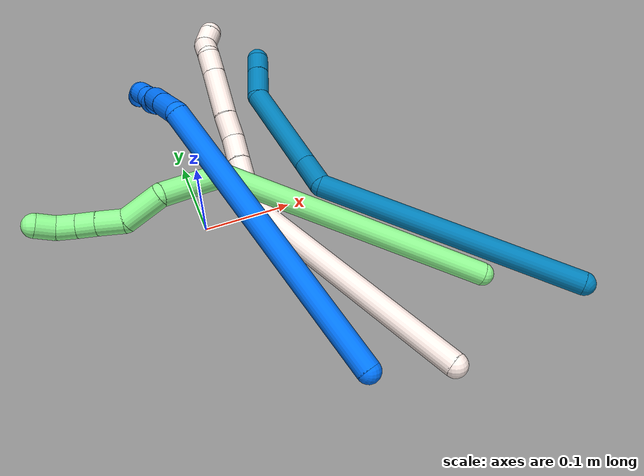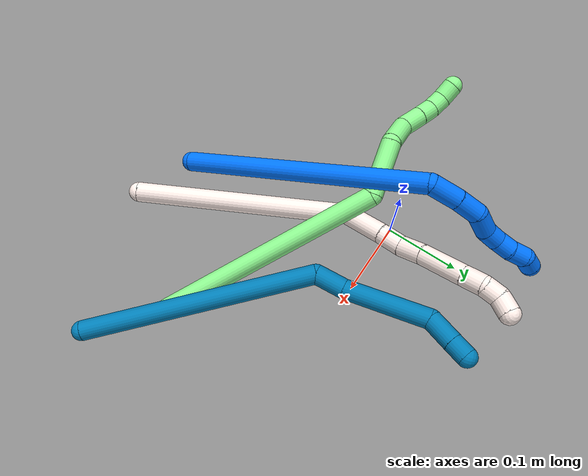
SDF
<sdf version="1.7">
 <world name="default">
  <model name="9">
   <static>0</static>
   <link name="9">
    <collision name="collision-cylinder-e_1_1_4">
     <pose>-0.069131 -0.017138 -0.128841 3.00936 -0.488819 -2.62257</pose>
     <geometry><cylinder><radius>0.0125</radius><length>0.294434</length></cylinder></geometry>
     <surface>
      <friction><ode><mu>1.16</mu><mu2>1.16</mu2><slip1>0</slip1><slip2>0</slip2></ode></friction>
      <contact><ode><kp>1e+06</kp><kd>1</kd><max_vel>0</max_vel><min_depth>0.001</min_depth></ode></contact>
     </surface>
    </collision>
    <visual name="visual-cylinder-e_1_1_4">
     <pose>-0.069131 -0.017138 -0.128841 3.00936 -0.488819 -2.62257</pose>
     <geometry><cylinder><radius>0.0125</radius><length>0.294434</length></cylinder></geometry>
     <material><ambient>0 0.490196 0.709804 1</ambient></material>
    </visual>
    <collision name="collision-cylinder-e_2_4_5">
     <pose>-0.134564 -0.031644 -0.276446 -3.00226 0.192744 -1.89115</pose>
     <geometry><cylinder><radius>0.0125</radius><length>0.038608</length></cylinder></geometry>
     <surface>
      <friction><ode><mu>1.16</mu><mu2>1.16</mu2><slip1>0</slip1><slip2>0</slip2></ode></friction>
      <contact><ode><kp>1e+06</kp><kd>1</kd><max_vel>0</max_vel><min_depth>0.001</min_depth></ode></contact>
     </surface>
    </collision>
    <visual name="visual-cylinder-e_2_4_5">
     <pose>-0.134564 -0.031644 -0.276446 -3.00226 0.192744 -1.89115</pose>
     <geometry><cylinder><radius>0.0125</radius><length>0.038608</length></cylinder></geometry>
     <material><ambient>0 0.490196 0.709804 1</ambient></material>
    </visual>
    <collision name="collision-cylinder-e_3_5_6">
     <pose>-0.131021 -0.014137 -0.347553 -2.86471 -0.002848 0.020438</pose>
     <geometry><cylinder><radius>0.0125</radius><length>0.108835</length></cylinder></geometry>
     <surface>
      <friction><ode><mu>1.16</mu><mu2>1.16</mu2><slip1>0</slip1><slip2>0</slip2></ode></friction>
      <contact><ode><kp>1e+06</kp><kd>1</kd><max_vel>0</max_vel><min_depth>0.001</min_depth></ode></contact>
     </surface>
    </collision>
    <visual name="visual-cylinder-e_3_5_6">
     <pose>-0.131021 -0.014137 -0.347553 -2.86471 -0.002848 0.020438</pose>
     <geometry><cylinder><radius>0.0125</radius><length>0.108835</length></cylinder></geometry>
     <material><ambient>0 0.490196 0.709804 1</ambient></material>
    </visual>
    <collision name="collision-cylinder-e_4_6_7">
     <pose>-0.123997 0.00945 -0.413537 -2.5732 0.417519 -1.25493</pose>
     <geometry><cylinder><radius>0.0125</radius><length>0.035408</length></cylinder></geometry>
     <surface>
      <friction><ode><mu>1.16</mu><mu2>1.16</mu2><slip1>0</slip1><slip2>0</slip2></ode></friction>
      <contact><ode><kp>1e+06</kp><kd>1</kd><max_vel>0</max_vel><min_depth>0.001</min_depth></ode></contact>
     </surface>
    </collision>
    <visual name="visual-cylinder-e_4_6_7">
     <pose>-0.123997 0.00945 -0.413537 -2.5732 0.417519 -1.25493</pose>
     <geometry><cylinder><radius>0.0125</radius><length>0.035408</length></cylinder></geometry>
     <material><ambient>0 0.490196 0.709804 1</ambient></material>
    </visual>
    <collision name="collision-cylinder-e_5_7_2">
     <pose>-0.112287 0.023616 -0.436047 -2.59032 0.41034 -1.26866</pose>
     <geometry><cylinder><radius>0.0125</radius><length>0.022715</length></cylinder></geometry>
     <surface>
      <friction><ode><mu>1.16</mu><mu2>1.16</mu2><slip1>0</slip1><slip2>0</slip2></ode></friction>
      <contact><ode><kp>1e+06</kp><kd>1</kd><max_vel>0</max_vel><min_depth>0.001</min_depth></ode></contact>
     </surface>
    </collision>
    <visual name="visual-cylinder-e_5_7_2">
     <pose>-0.112287 0.023616 -0.436047 -2.59032 0.41034 -1.26866</pose>
     <geometry><cylinder><radius>0.0125</radius><length>0.022715</length></cylinder></geometry>
     <material><ambient>0 0.490196 0.709804 1</ambient></material>
    </visual>
    <collision name="collision-sphere-2">
     <pose>-0.107757 0.02907 -0.444919 0 -0 0</pose>
     <geometry><sphere><radius>0.0125</radius></sphere></geometry>
     <surface>
      <friction><ode><mu>1.16</mu><mu2>1.16</mu2><slip1>0</slip1><slip2>0</slip2></ode></friction>
      <contact><ode><kp>1e+06</kp><kd>1</kd><max_vel>0</max_vel><min_depth>0.001</min_depth></ode></contact>
     </surface>
    </collision>
    <visual name="visual-sphere-2">
     <pose>-0.107757 0.02907 -0.444919 0 -0 0</pose>
     <geometry><sphere><radius>0.0125</radius></sphere></geometry>
     <material><ambient>0 0.490196 0.709804 1</ambient></material>
    </visual>
    <collision name="collision-sphere-7">
     <pose>-0.116818 0.018161 -0.427175 0 -0 0</pose>
     <geometry><sphere><radius>0.0125</radius></sphere></geometry>
     <surface>
      <friction><ode><mu>1.16</mu><mu2>1.16</mu2><slip1>0</slip1><slip2>0</slip2></ode></friction>
      <contact><ode><kp>1e+06</kp><kd>1</kd><max_vel>0</max_vel><min_depth>0.001</min_depth></ode></contact>
     </surface>
    </collision>
    <visual name="visual-sphere-7">
     <pose>-0.116818 0.018161 -0.427175 0 -0 0</pose>
     <geometry><sphere><radius>0.0125</radius></sphere></geometry>
     <material><ambient>0 0.490196 0.709804 1</ambient></material>
    </visual>
    <collision name="collision-sphere-6">
     <pose>-0.131176 0.000739 -0.399898 0 -0 0</pose>
     <geometry><sphere><radius>0.0125</radius></sphere></geometry>
     <surface>
      <friction><ode><mu>1.16</mu><mu2>1.16</mu2><slip1>0</slip1><slip2>0</slip2></ode></friction>
      <contact><ode><kp>1e+06</kp><kd>1</kd><max_vel>0</max_vel><min_depth>0.001</min_depth></ode></contact>
     </surface>
    </collision>
    <visual name="visual-sphere-6">
     <pose>-0.131176 0.000739 -0.399898 0 -0 0</pose>
     <geometry><sphere><radius>0.0125</radius></sphere></geometry>
     <material><ambient>0 0.490196 0.709804 1</ambient></material>
    </visual>
    <collision name="collision-sphere-5">
     <pose>-0.130866 -0.029012 -0.295209 0 -0 0</pose>
     <geometry><sphere><radius>0.0125</radius></sphere></geometry>
     <surface>
      <friction><ode><mu>1.16</mu><mu2>1.16</mu2><slip1>0</slip1><slip2>0</slip2></ode></friction>
      <contact><ode><kp>1e+06</kp><kd>1</kd><max_vel>0</max_vel><min_depth>0.001</min_depth></ode></contact>
     </surface>
    </collision>
    <visual name="visual-sphere-5">
     <pose>-0.130866 -0.029012 -0.295209 0 -0 0</pose>
     <geometry><sphere><radius>0.0125</radius></sphere></geometry>
     <material><ambient>0 0.490196 0.709804 1</ambient></material>
    </visual>
    <collision name="collision-sphere-1">
     <geometry><sphere><radius>0.0125</radius></sphere></geometry>
     <surface>
      <friction><ode><mu>1.16</mu><mu2>1.16</mu2><slip1>0</slip1><slip2>0</slip2></ode></friction>
      <contact><ode><kp>1e+06</kp><kd>1</kd><max_vel>0</max_vel><min_depth>0.001</min_depth></ode></contact>
     </surface>
    </collision>
    <visual name="visual-sphere-1">
     <geometry><sphere><radius>0.0125</radius></sphere></geometry>
     <material><ambient>0 0.490196 0.709804 1</ambient></material>
    </visual>
    <collision name="collision-sphere-4">
     <pose>-0.138261 -0.034275 -0.257683 0 -0 0</pose>
     <geometry><sphere><radius>0.0125</radius></sphere></geometry>
     <surface>
      <friction><ode><mu>1.16</mu><mu2>1.16</mu2><slip1>0</slip1><slip2>0</slip2></ode></friction>
      <contact><ode><kp>1e+06</kp><kd>1</kd><max_vel>0</max_vel><min_depth>0.001</min_depth></ode></contact>
     </surface>
    </collision>
    <visual name="visual-sphere-4">
     <pose>-0.138261 -0.034275 -0.257683 0 -0 0</pose>
     <geometry><sphere><radius>0.0125</radius></sphere></geometry>
     <material><ambient>0 0.490196 0.709804 1</ambient></material>
    </visual>
    <inertial>
     <pose>-0.093501 -0.01387 -0.221963 0 -0 0</pose>
     <mass>0.5</mass>
     <inertia>
      <ixx>-0.002482</ixx>
      <ixy>0</ixy>
      <ixz>0</ixz>
      <iyy>0.000857</iyy>
      <iyz>0</iyz>
      <izz>0.00118</izz>
     </inertia>
    </inertial>
   </link>
   <pose>0.338651 -0.240471 0.036974 1.4967 0.55305 0.289571</pose>
  </model>
  <model name="11">
   <static>0</static>
   <link name="11">
    <collision name="collision-cylinder-e_1_1_4">
     <pose>-0.073914 0.102022 0.045134 -1.15428 -0.585147 0.387323</pose>
     <geometry><cylinder><radius>0.0125</radius><length>0.267648</length></cylinder></geometry>
     <surface>
      <friction><ode><mu>1.16</mu><mu2>1.16</mu2><slip1>0</slip1><slip2>0</slip2></ode></friction>
      <contact><ode><kp>1e+06</kp><kd>1</kd><max_vel>0</max_vel><min_depth>0.001</min_depth></ode></contact>
     </surface>
    </collision>
    <visual name="visual-cylinder-e_1_1_4">
     <pose>-0.073914 0.102022 0.045134 -1.15428 -0.585147 0.387323</pose>
     <geometry><cylinder><radius>0.0125</radius><length>0.267648</length></cylinder></geometry>
     <material><ambient>1 0.933333 0.909804 1</ambient></material>
    </visual>
    <collision name="collision-cylinder-e_2_4_5">
     <pose>-0.149265 0.225174 0.106532 -0.914832 -0.05384 0.026507</pose>
     <geometry><cylinder><radius>0.0125</radius><length>0.053405</length></cylinder></geometry>
     <surface>
      <friction><ode><mu>1.16</mu><mu2>1.16</mu2><slip1>0</slip1><slip2>0</slip2></ode></friction>
      <contact><ode><kp>1e+06</kp><kd>1</kd><max_vel>0</max_vel><min_depth>0.001</min_depth></ode></contact>
     </surface>
    </collision>
    <visual name="visual-cylinder-e_2_4_5">
     <pose>-0.149265 0.225174 0.106532 -0.914832 -0.05384 0.026507</pose>
     <geometry><cylinder><radius>0.0125</radius><length>0.053405</length></cylinder></geometry>
     <material><ambient>1 0.933333 0.909804 1</ambient></material>
    </visual>
    <collision name="collision-cylinder-e_3_5_6">
     <pose>-0.15121 0.258321 0.131017 -0.970707 -0.034865 0.01839</pose>
     <geometry><cylinder><radius>0.0125</radius><length>0.02914</length></cylinder></geometry>
     <surface>
      <friction><ode><mu>1.16</mu><mu2>1.16</mu2><slip1>0</slip1><slip2>0</slip2></ode></friction>
      <contact><ode><kp>1e+06</kp><kd>1</kd><max_vel>0</max_vel><min_depth>0.001</min_depth></ode></contact>
     </surface>
    </collision>
    <visual name="visual-cylinder-e_3_5_6">
     <pose>-0.15121 0.258321 0.131017 -0.970707 -0.034865 0.01839</pose>
     <geometry><cylinder><radius>0.0125</radius><length>0.02914</length></cylinder></geometry>
     <material><ambient>1 0.933333 0.909804 1</ambient></material>
    </visual>
    <collision name="collision-cylinder-e_4_6_7">
     <pose>-0.15358 0.280314 0.149623 -0.765468 -0.128624 0.051842</pose>
     <geometry><cylinder><radius>0.0125</radius><length>0.029038</length></cylinder></geometry>
     <surface>
      <friction><ode><mu>1.16</mu><mu2>1.16</mu2><slip1>0</slip1><slip2>0</slip2></ode></friction>
      <contact><ode><kp>1e+06</kp><kd>1</kd><max_vel>0</max_vel><min_depth>0.001</min_depth></ode></contact>
     </surface>
    </collision>
    <visual name="visual-cylinder-e_4_6_7">
     <pose>-0.15358 0.280314 0.149623 -0.765468 -0.128624 0.051842</pose>
     <geometry><cylinder><radius>0.0125</radius><length>0.029038</length></cylinder></geometry>
     <material><ambient>1 0.933333 0.909804 1</ambient></material>
    </visual>
    <collision name="collision-cylinder-e_5_7_8">
     <pose>-0.157228 0.310529 0.178152 -0.839838 -0.065608 0.029301</pose>
     <geometry><cylinder><radius>0.0125</radius><length>0.054482</length></cylinder></geometry>
     <surface>
      <friction><ode><mu>1.16</mu><mu2>1.16</mu2><slip1>0</slip1><slip2>0</slip2></ode></friction>
      <contact><ode><kp>1e+06</kp><kd>1</kd><max_vel>0</max_vel><min_depth>0.001</min_depth></ode></contact>
     </surface>
    </collision>
    <visual name="visual-cylinder-e_5_7_8">
     <pose>-0.157228 0.310529 0.178152 -0.839838 -0.065608 0.029301</pose>
     <geometry><cylinder><radius>0.0125</radius><length>0.054482</length></cylinder></geometry>
     <material><ambient>1 0.933333 0.909804 1</ambient></material>
    </visual>
    <collision name="collision-cylinder-e_6_8_9">
     <pose>-0.159992 0.340208 0.2047 -0.84355 -0.077199 0.034653</pose>
     <geometry><cylinder><radius>0.0125</radius><length>0.025349</length></cylinder></geometry>
     <surface>
      <friction><ode><mu>1.16</mu><mu2>1.16</mu2><slip1>0</slip1><slip2>0</slip2></ode></friction>
      <contact><ode><kp>1e+06</kp><kd>1</kd><max_vel>0</max_vel><min_depth>0.001</min_depth></ode></contact>
     </surface>
    </collision>
    <visual name="visual-cylinder-e_6_8_9">
     <pose>-0.159992 0.340208 0.2047 -0.84355 -0.077199 0.034653</pose>
     <geometry><cylinder><radius>0.0125</radius><length>0.025349</length></cylinder></geometry>
     <material><ambient>1 0.933333 0.909804 1</ambient></material>
    </visual>
    <collision name="collision-cylinder-e_7_9_10">
     <pose>-0.161511 0.35924 0.216076 -1.27002 -0.053891 0.039712</pose>
     <geometry><cylinder><radius>0.0125</radius><length>0.020116</length></cylinder></geometry>
     <surface>
      <friction><ode><mu>1.16</mu><mu2>1.16</mu2><slip1>0</slip1><slip2>0</slip2></ode></friction>
      <contact><ode><kp>1e+06</kp><kd>1</kd><max_vel>0</max_vel><min_depth>0.001</min_depth></ode></contact>
     </surface>
    </collision>
    <visual name="visual-cylinder-e_7_9_10">
     <pose>-0.161511 0.35924 0.216076 -1.27002 -0.053891 0.039712</pose>
     <geometry><cylinder><radius>0.0125</radius><length>0.020116</length></cylinder></geometry>
     <material><ambient>1 0.933333 0.909804 1</ambient></material>
    </visual>
    <collision name="collision-cylinder-e_8_10_2">
     <pose>-0.157573 0.377023 0.223661 -1.05824 0.444765 -0.262919</pose>
     <geometry><cylinder><radius>0.0125</radius><length>0.020822</length></cylinder></geometry>
     <surface>
      <friction><ode><mu>1.16</mu><mu2>1.16</mu2><slip1>0</slip1><slip2>0</slip2></ode></friction>
      <contact><ode><kp>1e+06</kp><kd>1</kd><max_vel>0</max_vel><min_depth>0.001</min_depth></ode></contact>
     </surface>
    </collision>
    <visual name="visual-cylinder-e_8_10_2">
     <pose>-0.157573 0.377023 0.223661 -1.05824 0.444765 -0.262919</pose>
     <geometry><cylinder><radius>0.0125</radius><length>0.020822</length></cylinder></geometry>
     <material><ambient>1 0.933333 0.909804 1</ambient></material>
    </visual>
    <collision name="collision-sphere-2">
     <pose>-0.153094 0.385213 0.22827 0 -0 0</pose>
     <geometry><sphere><radius>0.0125</radius></sphere></geometry>
     <surface>
      <friction><ode><mu>1.16</mu><mu2>1.16</mu2><slip1>0</slip1><slip2>0</slip2></ode></friction>
      <contact><ode><kp>1e+06</kp><kd>1</kd><max_vel>0</max_vel><min_depth>0.001</min_depth></ode></contact>
     </surface>
    </collision>
    <visual name="visual-sphere-2">
     <pose>-0.153094 0.385213 0.22827 0 -0 0</pose>
     <geometry><sphere><radius>0.0125</radius></sphere></geometry>
     <material><ambient>1 0.933333 0.909804 1</ambient></material>
    </visual>
    <collision name="collision-sphere-10">
     <pose>-0.162053 0.368833 0.219052 0 -0 0</pose>
     <geometry><sphere><radius>0.0125</radius></sphere></geometry>
     <surface>
      <friction><ode><mu>1.16</mu><mu2>1.16</mu2><slip1>0</slip1><slip2>0</slip2></ode></friction>
      <contact><ode><kp>1e+06</kp><kd>1</kd><max_vel>0</max_vel><min_depth>0.001</min_depth></ode></contact>
     </surface>
    </collision>
    <visual name="visual-sphere-10">
     <pose>-0.162053 0.368833 0.219052 0 -0 0</pose>
     <geometry><sphere><radius>0.0125</radius></sphere></geometry>
     <material><ambient>1 0.933333 0.909804 1</ambient></material>
    </visual>
    <collision name="collision-sphere-9">
     <pose>-0.160969 0.349647 0.213101 0 -0 0</pose>
     <geometry><sphere><radius>0.0125</radius></sphere></geometry>
     <surface>
      <friction><ode><mu>1.16</mu><mu2>1.16</mu2><slip1>0</slip1><slip2>0</slip2></ode></friction>
      <contact><ode><kp>1e+06</kp><kd>1</kd><max_vel>0</max_vel><min_depth>0.001</min_depth></ode></contact>
     </surface>
    </collision>
    <visual name="visual-sphere-9">
     <pose>-0.160969 0.349647 0.213101 0 -0 0</pose>
     <geometry><sphere><radius>0.0125</radius></sphere></geometry>
     <material><ambient>1 0.933333 0.909804 1</ambient></material>
    </visual>
    <collision name="collision-sphere-4">
     <pose>-0.147828 0.204044 0.090269 0 -0 0</pose>
     <geometry><sphere><radius>0.0125</radius></sphere></geometry>
     <surface>
      <friction><ode><mu>1.16</mu><mu2>1.16</mu2><slip1>0</slip1><slip2>0</slip2></ode></friction>
      <contact><ode><kp>1e+06</kp><kd>1</kd><max_vel>0</max_vel><min_depth>0.001</min_depth></ode></contact>
     </surface>
    </collision>
    <visual name="visual-sphere-4">
     <pose>-0.147828 0.204044 0.090269 0 -0 0</pose>
     <geometry><sphere><radius>0.0125</radius></sphere></geometry>
     <material><ambient>1 0.933333 0.909804 1</ambient></material>
    </visual>
    <collision name="collision-sphere-1">
     <geometry><sphere><radius>0.0125</radius></sphere></geometry>
     <surface>
      <friction><ode><mu>1.16</mu><mu2>1.16</mu2><slip1>0</slip1><slip2>0</slip2></ode></friction>
      <contact><ode><kp>1e+06</kp><kd>1</kd><max_vel>0</max_vel><min_depth>0.001</min_depth></ode></contact>
     </surface>
    </collision>
    <visual name="visual-sphere-1">
     <geometry><sphere><radius>0.0125</radius></sphere></geometry>
     <material><ambient>1 0.933333 0.909804 1</ambient></material>
    </visual>
    <collision name="collision-sphere-8">
     <pose>-0.159014 0.330768 0.196299 0 -0 0</pose>
     <geometry><sphere><radius>0.0125</radius></sphere></geometry>
     <surface>
      <friction><ode><mu>1.16</mu><mu2>1.16</mu2><slip1>0</slip1><slip2>0</slip2></ode></friction>
      <contact><ode><kp>1e+06</kp><kd>1</kd><max_vel>0</max_vel><min_depth>0.001</min_depth></ode></contact>
     </surface>
    </collision>
    <visual name="visual-sphere-8">
     <pose>-0.159014 0.330768 0.196299 0 -0 0</pose>
     <geometry><sphere><radius>0.0125</radius></sphere></geometry>
     <material><ambient>1 0.933333 0.909804 1</ambient></material>
    </visual>
    <collision name="collision-sphere-5">
     <pose>-0.150702 0.246304 0.122795 0 -0 0</pose>
     <geometry><sphere><radius>0.0125</radius></sphere></geometry>
     <surface>
      <friction><ode><mu>1.16</mu><mu2>1.16</mu2><slip1>0</slip1><slip2>0</slip2></ode></friction>
      <contact><ode><kp>1e+06</kp><kd>1</kd><max_vel>0</max_vel><min_depth>0.001</min_depth></ode></contact>
     </surface>
    </collision>
    <visual name="visual-sphere-5">
     <pose>-0.150702 0.246304 0.122795 0 -0 0</pose>
     <geometry><sphere><radius>0.0125</radius></sphere></geometry>
     <material><ambient>1 0.933333 0.909804 1</ambient></material>
    </visual>
    <collision name="collision-sphere-6">
     <pose>-0.151717 0.270338 0.13924 0 -0 0</pose>
     <geometry><sphere><radius>0.0125</radius></sphere></geometry>
     <surface>
      <friction><ode><mu>1.16</mu><mu2>1.16</mu2><slip1>0</slip1><slip2>0</slip2></ode></friction>
      <contact><ode><kp>1e+06</kp><kd>1</kd><max_vel>0</max_vel><min_depth>0.001</min_depth></ode></contact>
     </surface>
    </collision>
    <visual name="visual-sphere-6">
     <pose>-0.151717 0.270338 0.13924 0 -0 0</pose>
     <geometry><sphere><radius>0.0125</radius></sphere></geometry>
     <material><ambient>1 0.933333 0.909804 1</ambient></material>
    </visual>
    <collision name="collision-sphere-7">
     <pose>-0.155442 0.290291 0.160005 0 -0 0</pose>
     <geometry><sphere><radius>0.0125</radius></sphere></geometry>
     <surface>
      <friction><ode><mu>1.16</mu><mu2>1.16</mu2><slip1>0</slip1><slip2>0</slip2></ode></friction>
      <contact><ode><kp>1e+06</kp><kd>1</kd><max_vel>0</max_vel><min_depth>0.001</min_depth></ode></contact>
     </surface>
    </collision>
    <visual name="visual-sphere-7">
     <pose>-0.155442 0.290291 0.160005 0 -0 0</pose>
     <geometry><sphere><radius>0.0125</radius></sphere></geometry>
     <material><ambient>1 0.933333 0.909804 1</ambient></material>
    </visual>
    <inertial>
     <pose>-0.111544 0.191235 0.099662 0 -0 0</pose>
     <mass>0.5</mass>
     <inertia>
      <ixx>0.001778</ixx>
      <ixy>0</ixy>
      <ixz>0</ixz>
      <iyy>0.001473</iyy>
      <iyz>0</iyz>
      <izz>-0.000351</izz>
     </inertia>
    </inertial>
   </link>
   <pose>0.160385 -0.287987 0.064512 -0.385791 0.038153 -0.131317</pose>
  </model>
  <model name="13">
   <static>0</static>
   <link name="13">
    <collision name="collision-cylinder-e_1_1_4">
     <pose>-0.052726 0.041844 0.132053 -0.306866 -0.363692 0.056857</pose>
     <geometry><cylinder><radius>0.0125</radius><length>0.296439</length></cylinder></geometry>
     <surface>
      <friction><ode><mu>1.16</mu><mu2>1.16</mu2><slip1>0</slip1><slip2>0</slip2></ode></friction>
      <contact><ode><kp>1e+06</kp><kd>1</kd><max_vel>0</max_vel><min_depth>0.001</min_depth></ode></contact>
     </surface>
    </collision>
    <visual name="visual-cylinder-e_1_1_4">
     <pose>-0.052726 0.041844 0.132053 -0.306866 -0.363692 0.056857</pose>
     <geometry><cylinder><radius>0.0125</radius><length>0.296439</length></cylinder></geometry>
     <material><ambient>0.564706 0.984314 0.572549 1</ambient></material>
    </visual>
    <collision name="collision-cylinder-e_2_4_5">
     <pose>-0.096343 0.077861 0.297565 0.17246 0.26203 0.022781</pose>
     <geometry><cylinder><radius>0.0125</radius><length>0.070326</length></cylinder></geometry>
     <surface>
      <friction><ode><mu>1.16</mu><mu2>1.16</mu2><slip1>0</slip1><slip2>0</slip2></ode></friction>
      <contact><ode><kp>1e+06</kp><kd>1</kd><max_vel>0</max_vel><min_depth>0.001</min_depth></ode></contact>
     </surface>
    </collision>
    <visual name="visual-cylinder-e_2_4_5">
     <pose>-0.096343 0.077861 0.297565 0.17246 0.26203 0.022781</pose>
     <geometry><cylinder><radius>0.0125</radius><length>0.070326</length></cylinder></geometry>
     <material><ambient>0.564706 0.984314 0.572549 1</ambient></material>
    </visual>
    <collision name="collision-cylinder-e_3_5_6">
     <pose>-0.090067 0.057901 0.346977 0.724934 -0.132161 -0.050181</pose>
     <geometry><cylinder><radius>0.0125</radius><length>0.042999</length></cylinder></geometry>
     <surface>
      <friction><ode><mu>1.16</mu><mu2>1.16</mu2><slip1>0</slip1><slip2>0</slip2></ode></friction>
      <contact><ode><kp>1e+06</kp><kd>1</kd><max_vel>0</max_vel><min_depth>0.001</min_depth></ode></contact>
     </surface>
    </collision>
    <visual name="visual-cylinder-e_3_5_6">
     <pose>-0.090067 0.057901 0.346977 0.724934 -0.132161 -0.050181</pose>
     <geometry><cylinder><radius>0.0125</radius><length>0.042999</length></cylinder></geometry>
     <material><ambient>0.564706 0.984314 0.572549 1</ambient></material>
    </visual>
    <collision name="collision-cylinder-e_4_6_7">
     <pose>-0.098069 0.040859 0.375858 0.221375 -0.371887 -0.041809</pose>
     <geometry><cylinder><radius>0.0125</radius><length>0.028447</length></cylinder></geometry>
     <surface>
      <friction><ode><mu>1.16</mu><mu2>1.16</mu2><slip1>0</slip1><slip2>0</slip2></ode></friction>
      <contact><ode><kp>1e+06</kp><kd>1</kd><max_vel>0</max_vel><min_depth>0.001</min_depth></ode></contact>
     </surface>
    </collision>
    <visual name="visual-cylinder-e_4_6_7">
     <pose>-0.098069 0.040859 0.375858 0.221375 -0.371887 -0.041809</pose>
     <geometry><cylinder><radius>0.0125</radius><length>0.028447</length></cylinder></geometry>
     <material><ambient>0.564706 0.984314 0.572549 1</ambient></material>
    </visual>
    <collision name="collision-cylinder-e_5_7_8">
     <pose>-0.10671 0.035656 0.3982 0.239025 -0.34411 -0.041729</pose>
     <geometry><cylinder><radius>0.0125</radius><length>0.020585</length></cylinder></geometry>
     <surface>
      <friction><ode><mu>1.16</mu><mu2>1.16</mu2><slip1>0</slip1><slip2>0</slip2></ode></friction>
      <contact><ode><kp>1e+06</kp><kd>1</kd><max_vel>0</max_vel><min_depth>0.001</min_depth></ode></contact>
     </surface>
    </collision>
    <visual name="visual-cylinder-e_5_7_8">
     <pose>-0.10671 0.035656 0.3982 0.239025 -0.34411 -0.041729</pose>
     <geometry><cylinder><radius>0.0125</radius><length>0.020585</length></cylinder></geometry>
     <material><ambient>0.564706 0.984314 0.572549 1</ambient></material>
    </visual>
    <collision name="collision-cylinder-e_6_8_9">
     <pose>-0.112126 0.032076 0.41751 0.129196 -0.19239 -0.012484</pose>
     <geometry><cylinder><radius>0.0125</radius><length>0.020334</length></cylinder></geometry>
     <surface>
      <friction><ode><mu>1.16</mu><mu2>1.16</mu2><slip1>0</slip1><slip2>0</slip2></ode></friction>
      <contact><ode><kp>1e+06</kp><kd>1</kd><max_vel>0</max_vel><min_depth>0.001</min_depth></ode></contact>
     </surface>
    </collision>
    <visual name="visual-cylinder-e_6_8_9">
     <pose>-0.112126 0.032076 0.41751 0.129196 -0.19239 -0.012484</pose>
     <geometry><cylinder><radius>0.0125</radius><length>0.020334</length></cylinder></geometry>
     <material><ambient>0.564706 0.984314 0.572549 1</ambient></material>
    </visual>
    <collision name="collision-cylinder-e_7_9_2">
     <pose>-0.11437 0.032619 0.437675 -0.176217 -0.028732 0.002538</pose>
     <geometry><cylinder><radius>0.0125</radius><length>0.02087</length></cylinder></geometry>
     <surface>
      <friction><ode><mu>1.16</mu><mu2>1.16</mu2><slip1>0</slip1><slip2>0</slip2></ode></friction>
      <contact><ode><kp>1e+06</kp><kd>1</kd><max_vel>0</max_vel><min_depth>0.001</min_depth></ode></contact>
     </surface>
    </collision>
    <visual name="visual-cylinder-e_7_9_2">
     <pose>-0.11437 0.032619 0.437675 -0.176217 -0.028732 0.002538</pose>
     <geometry><cylinder><radius>0.0125</radius><length>0.02087</length></cylinder></geometry>
     <material><ambient>0.564706 0.984314 0.572549 1</ambient></material>
    </visual>
    <collision name="collision-sphere-2">
     <pose>-0.114669 0.034447 0.447944 0 -0 0</pose>
     <geometry><sphere><radius>0.0125</radius></sphere></geometry>
     <surface>
      <friction><ode><mu>1.16</mu><mu2>1.16</mu2><slip1>0</slip1><slip2>0</slip2></ode></friction>
      <contact><ode><kp>1e+06</kp><kd>1</kd><max_vel>0</max_vel><min_depth>0.001</min_depth></ode></contact>
     </surface>
    </collision>
    <visual name="visual-sphere-2">
     <pose>-0.114669 0.034447 0.447944 0 -0 0</pose>
     <geometry><sphere><radius>0.0125</radius></sphere></geometry>
     <material><ambient>0.564706 0.984314 0.572549 1</ambient></material>
    </visual>
    <collision name="collision-sphere-9">
     <pose>-0.11407 0.03079 0.427406 0 -0 0</pose>
     <geometry><sphere><radius>0.0125</radius></sphere></geometry>
     <surface>
      <friction><ode><mu>1.16</mu><mu2>1.16</mu2><slip1>0</slip1><slip2>0</slip2></ode></friction>
      <contact><ode><kp>1e+06</kp><kd>1</kd><max_vel>0</max_vel><min_depth>0.001</min_depth></ode></contact>
     </surface>
    </collision>
    <visual name="visual-sphere-9">
     <pose>-0.11407 0.03079 0.427406 0 -0 0</pose>
     <geometry><sphere><radius>0.0125</radius></sphere></geometry>
     <material><ambient>0.564706 0.984314 0.572549 1</ambient></material>
    </visual>
    <collision name="collision-sphere-4">
     <pose>-0.105451 0.083689 0.264107 0 -0 0</pose>
     <geometry><sphere><radius>0.0125</radius></sphere></geometry>
     <surface>
      <friction><ode><mu>1.16</mu><mu2>1.16</mu2><slip1>0</slip1><slip2>0</slip2></ode></friction>
      <contact><ode><kp>1e+06</kp><kd>1</kd><max_vel>0</max_vel><min_depth>0.001</min_depth></ode></contact>
     </surface>
    </collision>
    <visual name="visual-sphere-4">
     <pose>-0.105451 0.083689 0.264107 0 -0 0</pose>
     <geometry><sphere><radius>0.0125</radius></sphere></geometry>
     <material><ambient>0.564706 0.984314 0.572549 1</ambient></material>
    </visual>
    <collision name="collision-sphere-1">
     <geometry><sphere><radius>0.0125</radius></sphere></geometry>
     <surface>
      <friction><ode><mu>1.16</mu><mu2>1.16</mu2><slip1>0</slip1><slip2>0</slip2></ode></friction>
      <contact><ode><kp>1e+06</kp><kd>1</kd><max_vel>0</max_vel><min_depth>0.001</min_depth></ode></contact>
     </surface>
    </collision>
    <visual name="visual-sphere-1">
     <geometry><sphere><radius>0.0125</radius></sphere></geometry>
     <material><ambient>0.564706 0.984314 0.572549 1</ambient></material>
    </visual>
    <collision name="collision-sphere-8">
     <pose>-0.110182 0.033362 0.407613 0 -0 0</pose>
     <geometry><sphere><radius>0.0125</radius></sphere></geometry>
     <surface>
      <friction><ode><mu>1.16</mu><mu2>1.16</mu2><slip1>0</slip1><slip2>0</slip2></ode></friction>
      <contact><ode><kp>1e+06</kp><kd>1</kd><max_vel>0</max_vel><min_depth>0.001</min_depth></ode></contact>
     </surface>
    </collision>
    <visual name="visual-sphere-8">
     <pose>-0.110182 0.033362 0.407613 0 -0 0</pose>
     <geometry><sphere><radius>0.0125</radius></sphere></geometry>
     <material><ambient>0.564706 0.984314 0.572549 1</ambient></material>
    </visual>
    <collision name="collision-sphere-5">
     <pose>-0.087234 0.072032 0.331024 0 -0 0</pose>
     <geometry><sphere><radius>0.0125</radius></sphere></geometry>
     <surface>
      <friction><ode><mu>1.16</mu><mu2>1.16</mu2><slip1>0</slip1><slip2>0</slip2></ode></friction>
      <contact><ode><kp>1e+06</kp><kd>1</kd><max_vel>0</max_vel><min_depth>0.001</min_depth></ode></contact>
     </surface>
    </collision>
    <visual name="visual-sphere-5">
     <pose>-0.087234 0.072032 0.331024 0 -0 0</pose>
     <geometry><sphere><radius>0.0125</radius></sphere></geometry>
     <material><ambient>0.564706 0.984314 0.572549 1</ambient></material>
    </visual>
    <collision name="collision-sphere-6">
     <pose>-0.0929 0.043769 0.36293 0 -0 0</pose>
     <geometry><sphere><radius>0.0125</radius></sphere></geometry>
     <surface>
      <friction><ode><mu>1.16</mu><mu2>1.16</mu2><slip1>0</slip1><slip2>0</slip2></ode></friction>
      <contact><ode><kp>1e+06</kp><kd>1</kd><max_vel>0</max_vel><min_depth>0.001</min_depth></ode></contact>
     </surface>
    </collision>
    <visual name="visual-sphere-6">
     <pose>-0.0929 0.043769 0.36293 0 -0 0</pose>
     <geometry><sphere><radius>0.0125</radius></sphere></geometry>
     <material><ambient>0.564706 0.984314 0.572549 1</ambient></material>
    </visual>
    <collision name="collision-sphere-7">
     <pose>-0.103238 0.03795 0.388786 0 -0 0</pose>
     <geometry><sphere><radius>0.0125</radius></sphere></geometry>
     <surface>
      <friction><ode><mu>1.16</mu><mu2>1.16</mu2><slip1>0</slip1><slip2>0</slip2></ode></friction>
      <contact><ode><kp>1e+06</kp><kd>1</kd><max_vel>0</max_vel><min_depth>0.001</min_depth></ode></contact>
     </surface>
    </collision>
    <visual name="visual-sphere-7">
     <pose>-0.103238 0.03795 0.388786 0 -0 0</pose>
     <geometry><sphere><radius>0.0125</radius></sphere></geometry>
     <material><ambient>0.564706 0.984314 0.572549 1</ambient></material>
    </visual>
    <inertial>
     <pose>-0.071863 0.047198 0.22301 0 -0 0</pose>
     <mass>0.5</mass>
     <inertia>
      <ixx>0.00219</ixx>
      <ixy>0</ixy>
      <ixz>0</ixz>
      <iyy>0.002254</iyy>
      <iyz>0</iyz>
      <izz>0.000202</izz>
     </inertia>
    </inertial>
   </link>
   <pose>0.257084 -0.179342 0.015753 1.29229 -0.415494 -1.53936</pose>
  </model>
  <model name="14">
   <static>0</static>
   <link name="14">
    <collision name="collision-cylinder-e_1_1_4">
     <pose>-0.011133 0.158449 0.015917 -1.47068 -0.069794 0.063138</pose>
     <geometry><cylinder><radius>0.0125</radius><length>0.319271</length></cylinder></geometry>
     <surface>
      <friction><ode><mu>1.16</mu><mu2>1.16</mu2><slip1>0</slip1><slip2>0</slip2></ode></friction>
      <contact><ode><kp>1e+06</kp><kd>1</kd><max_vel>0</max_vel><min_depth>0.001</min_depth></ode></contact>
     </surface>
    </collision>
    <visual name="visual-cylinder-e_1_1_4">
     <pose>-0.011133 0.158449 0.015917 -1.47068 -0.069794 0.063138</pose>
     <geometry><cylinder><radius>0.0125</radius><length>0.319271</length></cylinder></geometry>
     <material><ambient>0 0.462745 1 1</ambient></material>
    </visual>
    <collision name="collision-cylinder-e_2_4_5">
     <pose>-0.033295 0.330723 0.025965 -1.97228 -0.633442 0.919626</pose>
     <geometry><cylinder><radius>0.0125</radius><length>0.037268</length></cylinder></geometry>
     <surface>
      <friction><ode><mu>1.16</mu><mu2>1.16</mu2><slip1>0</slip1><slip2>0</slip2></ode></friction>
      <contact><ode><kp>1e+06</kp><kd>1</kd><max_vel>0</max_vel><min_depth>0.001</min_depth></ode></contact>
     </surface>
    </collision>
    <visual name="visual-cylinder-e_2_4_5">
     <pose>-0.033295 0.330723 0.025965 -1.97228 -0.633442 0.919626</pose>
     <geometry><cylinder><radius>0.0125</radius><length>0.037268</length></cylinder></geometry>
     <material><ambient>0 0.462745 1 1</ambient></material>
    </visual>
    <collision name="collision-cylinder-e_3_5_6">
     <pose>-0.053474 0.355172 0.014125 -2.08285 -0.643924 1.03633</pose>
     <geometry><cylinder><radius>0.0125</radius><length>0.030479</length></cylinder></geometry>
     <surface>
      <friction><ode><mu>1.16</mu><mu2>1.16</mu2><slip1>0</slip1><slip2>0</slip2></ode></friction>
      <contact><ode><kp>1e+06</kp><kd>1</kd><max_vel>0</max_vel><min_depth>0.001</min_depth></ode></contact>
     </surface>
    </collision>
    <visual name="visual-cylinder-e_3_5_6">
     <pose>-0.053474 0.355172 0.014125 -2.08285 -0.643924 1.03633</pose>
     <geometry><cylinder><radius>0.0125</radius><length>0.030479</length></cylinder></geometry>
     <material><ambient>0 0.462745 1 1</ambient></material>
    </visual>
    <collision name="collision-cylinder-e_4_6_7">
     <pose>-0.073029 0.370254 -0.000932 -2.68554 -0.799403 2.13693</pose>
     <geometry><cylinder><radius>0.0125</radius><length>0.029031</length></cylinder></geometry>
     <surface>
      <friction><ode><mu>1.16</mu><mu2>1.16</mu2><slip1>0</slip1><slip2>0</slip2></ode></friction>
      <contact><ode><kp>1e+06</kp><kd>1</kd><max_vel>0</max_vel><min_depth>0.001</min_depth></ode></contact>
     </surface>
    </collision>
    <visual name="visual-cylinder-e_4_6_7">
     <pose>-0.073029 0.370254 -0.000932 -2.68554 -0.799403 2.13693</pose>
     <geometry><cylinder><radius>0.0125</radius><length>0.029031</length></cylinder></geometry>
     <material><ambient>0 0.462745 1 1</ambient></material>
    </visual>
    <collision name="collision-cylinder-e_5_7_8">
     <pose>-0.090941 0.380842 -0.014622 -2.21497 -0.774682 1.36954</pose>
     <geometry><cylinder><radius>0.0125</radius><length>0.021461</length></cylinder></geometry>
     <surface>
      <friction><ode><mu>1.16</mu><mu2>1.16</mu2><slip1>0</slip1><slip2>0</slip2></ode></friction>
      <contact><ode><kp>1e+06</kp><kd>1</kd><max_vel>0</max_vel><min_depth>0.001</min_depth></ode></contact>
     </surface>
    </collision>
    <visual name="visual-cylinder-e_5_7_8">
     <pose>-0.090941 0.380842 -0.014622 -2.21497 -0.774682 1.36954</pose>
     <geometry><cylinder><radius>0.0125</radius><length>0.021461</length></cylinder></geometry>
     <material><ambient>0 0.462745 1 1</ambient></material>
    </visual>
    <collision name="collision-cylinder-e_6_8_9">
     <pose>-0.10348 0.395007 -0.023641 -2.07316 -0.502067 0.818055</pose>
     <geometry><cylinder><radius>0.0125</radius><length>0.020914</length></cylinder></geometry>
     <surface>
      <friction><ode><mu>1.16</mu><mu2>1.16</mu2><slip1>0</slip1><slip2>0</slip2></ode></friction>
      <contact><ode><kp>1e+06</kp><kd>1</kd><max_vel>0</max_vel><min_depth>0.001</min_depth></ode></contact>
     </surface>
    </collision>
    <visual name="visual-cylinder-e_6_8_9">
     <pose>-0.10348 0.395007 -0.023641 -2.07316 -0.502067 0.818055</pose>
     <geometry><cylinder><radius>0.0125</radius><length>0.020914</length></cylinder></geometry>
     <material><ambient>0 0.462745 1 1</ambient></material>
    </visual>
    <collision name="collision-cylinder-e_7_9_10">
     <pose>-0.114932 0.411066 -0.030831 -1.90386 -0.647412 0.880505</pose>
     <geometry><cylinder><radius>0.0125</radius><length>0.02129</length></cylinder></geometry>
     <surface>
      <friction><ode><mu>1.16</mu><mu2>1.16</mu2><slip1>0</slip1><slip2>0</slip2></ode></friction>
      <contact><ode><kp>1e+06</kp><kd>1</kd><max_vel>0</max_vel><min_depth>0.001</min_depth></ode></contact>
     </surface>
    </collision>
    <visual name="visual-cylinder-e_7_9_10">
     <pose>-0.114932 0.411066 -0.030831 -1.90386 -0.647412 0.880505</pose>
     <geometry><cylinder><radius>0.0125</radius><length>0.02129</length></cylinder></geometry>
     <material><ambient>0 0.462745 1 1</ambient></material>
    </visual>
    <collision name="collision-cylinder-e_8_10_2">
     <pose>-0.129634 0.422067 -0.03865 -2.60838 -0.955322 2.17062</pose>
     <geometry><cylinder><radius>0.0125</radius><length>0.020287</length></cylinder></geometry>
     <surface>
      <friction><ode><mu>1.16</mu><mu2>1.16</mu2><slip1>0</slip1><slip2>0</slip2></ode></friction>
      <contact><ode><kp>1e+06</kp><kd>1</kd><max_vel>0</max_vel><min_depth>0.001</min_depth></ode></contact>
     </surface>
    </collision>
    <visual name="visual-cylinder-e_8_10_2">
     <pose>-0.129634 0.422067 -0.03865 -2.60838 -0.955322 2.17062</pose>
     <geometry><cylinder><radius>0.0125</radius><length>0.020287</length></cylinder></geometry>
     <material><ambient>0 0.462745 1 1</ambient></material>
    </visual>
    <collision name="collision-sphere-2">
     <pose>-0.137916 0.425043 -0.043693 0 -0 0</pose>
     <geometry><sphere><radius>0.0125</radius></sphere></geometry>
     <surface>
      <friction><ode><mu>1.16</mu><mu2>1.16</mu2><slip1>0</slip1><slip2>0</slip2></ode></friction>
      <contact><ode><kp>1e+06</kp><kd>1</kd><max_vel>0</max_vel><min_depth>0.001</min_depth></ode></contact>
     </surface>
    </collision>
    <visual name="visual-sphere-2">
     <pose>-0.137916 0.425043 -0.043693 0 -0 0</pose>
     <geometry><sphere><radius>0.0125</radius></sphere></geometry>
     <material><ambient>0 0.462745 1 1</ambient></material>
    </visual>
    <collision name="collision-sphere-10">
     <pose>-0.121352 0.41909 -0.033607 0 -0 0</pose>
     <geometry><sphere><radius>0.0125</radius></sphere></geometry>
     <surface>
      <friction><ode><mu>1.16</mu><mu2>1.16</mu2><slip1>0</slip1><slip2>0</slip2></ode></friction>
      <contact><ode><kp>1e+06</kp><kd>1</kd><max_vel>0</max_vel><min_depth>0.001</min_depth></ode></contact>
     </surface>
    </collision>
    <visual name="visual-sphere-10">
     <pose>-0.121352 0.41909 -0.033607 0 -0 0</pose>
     <geometry><sphere><radius>0.0125</radius></sphere></geometry>
     <material><ambient>0 0.462745 1 1</ambient></material>
    </visual>
    <collision name="collision-sphere-9">
     <pose>-0.108512 0.403041 -0.028055 0 -0 0</pose>
     <geometry><sphere><radius>0.0125</radius></sphere></geometry>
     <surface>
      <friction><ode><mu>1.16</mu><mu2>1.16</mu2><slip1>0</slip1><slip2>0</slip2></ode></friction>
      <contact><ode><kp>1e+06</kp><kd>1</kd><max_vel>0</max_vel><min_depth>0.001</min_depth></ode></contact>
     </surface>
    </collision>
    <visual name="visual-sphere-9">
     <pose>-0.108512 0.403041 -0.028055 0 -0 0</pose>
     <geometry><sphere><radius>0.0125</radius></sphere></geometry>
     <material><ambient>0 0.462745 1 1</ambient></material>
    </visual>
    <collision name="collision-sphere-4">
     <pose>-0.022265 0.316899 0.031835 0 -0 0</pose>
     <geometry><sphere><radius>0.0125</radius></sphere></geometry>
     <surface>
      <friction><ode><mu>1.16</mu><mu2>1.16</mu2><slip1>0</slip1><slip2>0</slip2></ode></friction>
      <contact><ode><kp>1e+06</kp><kd>1</kd><max_vel>0</max_vel><min_depth>0.001</min_depth></ode></contact>
     </surface>
    </collision>
    <visual name="visual-sphere-4">
     <pose>-0.022265 0.316899 0.031835 0 -0 0</pose>
     <geometry><sphere><radius>0.0125</radius></sphere></geometry>
     <material><ambient>0 0.462745 1 1</ambient></material>
    </visual>
    <collision name="collision-sphere-1">
     <geometry><sphere><radius>0.0125</radius></sphere></geometry>
     <surface>
      <friction><ode><mu>1.16</mu><mu2>1.16</mu2><slip1>0</slip1><slip2>0</slip2></ode></friction>
      <contact><ode><kp>1e+06</kp><kd>1</kd><max_vel>0</max_vel><min_depth>0.001</min_depth></ode></contact>
     </surface>
    </collision>
    <visual name="visual-sphere-1">
     <geometry><sphere><radius>0.0125</radius></sphere></geometry>
     <material><ambient>0 0.462745 1 1</ambient></material>
    </visual>
    <collision name="collision-sphere-8">
     <pose>-0.098447 0.386973 -0.019227 0 -0 0</pose>
     <geometry><sphere><radius>0.0125</radius></sphere></geometry>
     <surface>
      <friction><ode><mu>1.16</mu><mu2>1.16</mu2><slip1>0</slip1><slip2>0</slip2></ode></friction>
      <contact><ode><kp>1e+06</kp><kd>1</kd><max_vel>0</max_vel><min_depth>0.001</min_depth></ode></contact>
     </surface>
    </collision>
    <visual name="visual-sphere-8">
     <pose>-0.098447 0.386973 -0.019227 0 -0 0</pose>
     <geometry><sphere><radius>0.0125</radius></sphere></geometry>
     <material><ambient>0 0.462745 1 1</ambient></material>
    </visual>
    <collision name="collision-sphere-5">
     <pose>-0.044325 0.344548 0.020096 0 -0 0</pose>
     <geometry><sphere><radius>0.0125</radius></sphere></geometry>
     <surface>
      <friction><ode><mu>1.16</mu><mu2>1.16</mu2><slip1>0</slip1><slip2>0</slip2></ode></friction>
      <contact><ode><kp>1e+06</kp><kd>1</kd><max_vel>0</max_vel><min_depth>0.001</min_depth></ode></contact>
     </surface>
    </collision>
    <visual name="visual-sphere-5">
     <pose>-0.044325 0.344548 0.020096 0 -0 0</pose>
     <geometry><sphere><radius>0.0125</radius></sphere></geometry>
     <material><ambient>0 0.462745 1 1</ambient></material>
    </visual>
    <collision name="collision-sphere-6">
     <pose>-0.062622 0.365797 0.008153 0 -0 0</pose>
     <geometry><sphere><radius>0.0125</radius></sphere></geometry>
     <surface>
      <friction><ode><mu>1.16</mu><mu2>1.16</mu2><slip1>0</slip1><slip2>0</slip2></ode></friction>
      <contact><ode><kp>1e+06</kp><kd>1</kd><max_vel>0</max_vel><min_depth>0.001</min_depth></ode></contact>
     </surface>
    </collision>
    <visual name="visual-sphere-6">
     <pose>-0.062622 0.365797 0.008153 0 -0 0</pose>
     <geometry><sphere><radius>0.0125</radius></sphere></geometry>
     <material><ambient>0 0.462745 1 1</ambient></material>
    </visual>
    <collision name="collision-sphere-7">
     <pose>-0.083436 0.37471 -0.010017 0 -0 0</pose>
     <geometry><sphere><radius>0.0125</radius></sphere></geometry>
     <surface>
      <friction><ode><mu>1.16</mu><mu2>1.16</mu2><slip1>0</slip1><slip2>0</slip2></ode></friction>
      <contact><ode><kp>1e+06</kp><kd>1</kd><max_vel>0</max_vel><min_depth>0.001</min_depth></ode></contact>
     </surface>
    </collision>
    <visual name="visual-sphere-7">
     <pose>-0.083436 0.37471 -0.010017 0 -0 0</pose>
     <geometry><sphere><radius>0.0125</radius></sphere></geometry>
     <material><ambient>0 0.462745 1 1</ambient></material>
    </visual>
    <inertial>
     <pose>-0.035475 0.236472 0.008409 0 -0 0</pose>
     <mass>0.5</mass>
     <inertia>
      <ixx>0.00289</ixx>
      <ixy>0</ixy>
      <ixz>0</ixz>
      <iyy>0.000507</iyy>
      <iyz>0</iyz>
      <izz>-0.002517</izz>
     </inertia>
    </inertial>
   </link>
   <pose>0.085543 -0.26173 0.05808 0.602549 -0.941919 -0.329604</pose>
  </model>
 </world>
</sdf>
